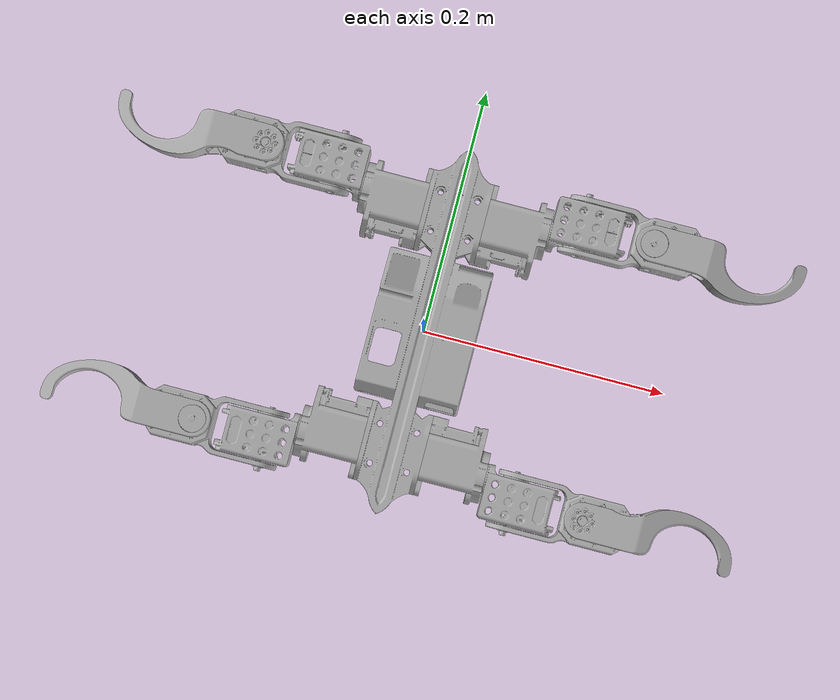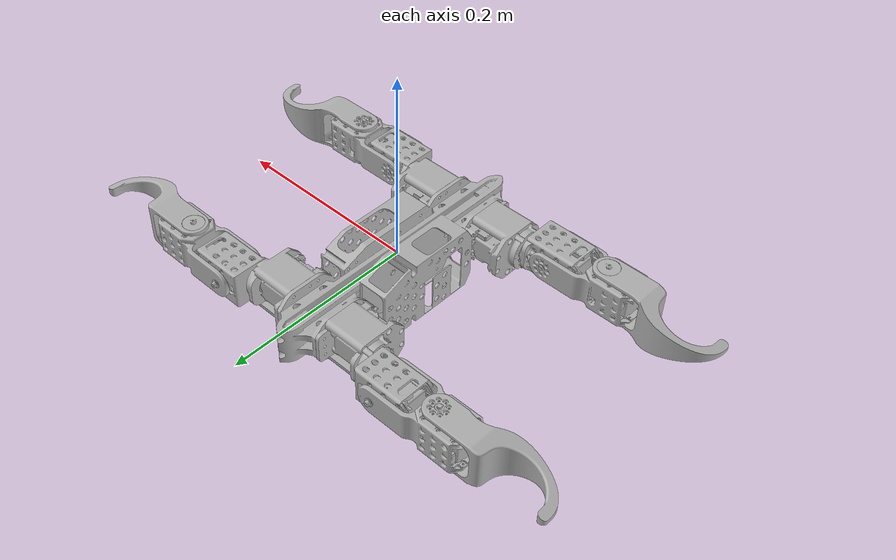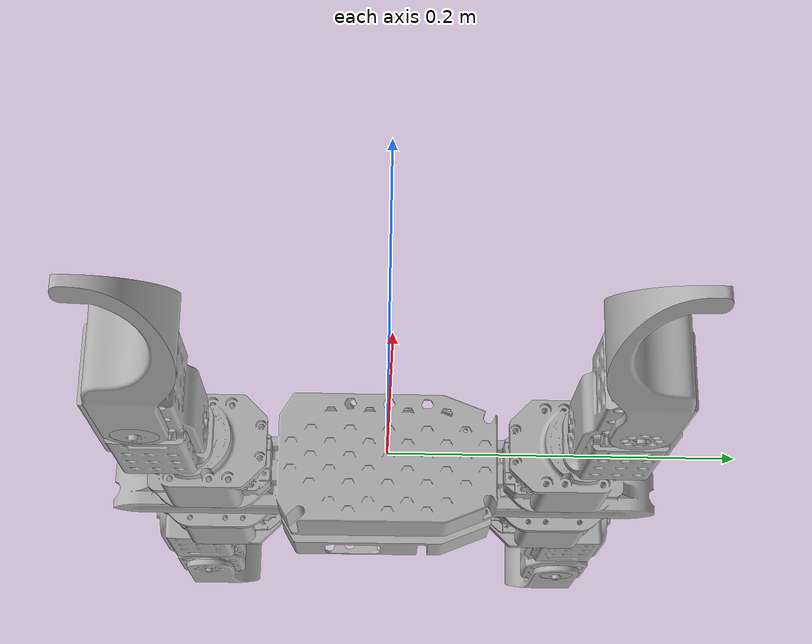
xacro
<?xml version="1.0" ?>
<robot name="sence_main" xmlns:xacro="http://www.ros.org/wiki/xacro">

<xacro:include filename="$(find sence_leg_description)/urdf/sence_leg_macro.xacro"/>
<xacro:include filename="$(find sence_main_description)/urdf/materials.xacro" />
<xacro:include filename="$(find sence_main_description)/urdf/sence_main.trans" />
<xacro:include filename="$(find sence_main_description)/urdf/sence_main.gazebo" />
<link name="base_link">
</link>

<link name="core">
  <inertial>
    <origin xyz="0.00021651891376084524 -0.00010528739970071409 -0.014193022646418384" rpy="0 0 0"/>
    <mass value="0.4767252028506373"/>
    <inertia ixx="0.003452" iyy="0.000207" izz="0.003461" ixy="3e-06" iyz="2e-06" ixz="2e-06"/>
  </inertial>
  <visual>
    <origin xyz="0 0 0" rpy="0 0 0"/>
    <geometry>
      <mesh filename="package://sence_main_description/meshes/base_link.stl" scale="0.001 0.001 0.001"/>
    </geometry>
    <material name="silver"/>
  </visual>
  <collision>
    <origin xyz="0 0 0" rpy="0 0 0"/>
    <geometry>
      <mesh filename="package://sence_main_description/meshes/base_link.stl" scale="0.001 0.001 0.001"/>
    </geometry>
  </collision>
</link>

<joint name="con" type="fixed">
  <origin rpy="0 0 0" xyz="0 0 0"/>
  <parent link="base_link"/>
  <child link="core"/>
</joint>

<xacro:sence_leg_macro prefix="back_right_leg_" parent="core" adjT="0.0826 -0.105095 -0.05196" adjR="0 3.14159 0"/>
<xacro:sence_leg_macro prefix="back_left_leg_" parent="core" adjT="-0.0826 -0.105095 0.024316" adjR="0 0 0"/>
<xacro:sence_leg_macro prefix="front_right_leg_" parent="core" adjT="0.0826 0.105095 0.024316" adjR="3.14159 3.14159 0"/>
<xacro:sence_leg_macro prefix="front_left_leg_" parent="core" adjT="-0.0826 0.105095 -0.05196" adjR="3.14159 0 0"/>

</robot>

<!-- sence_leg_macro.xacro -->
<robot name="sence_leg" xmlns:xacro="http://www.ros.org/wiki/xacro">

<xacro:include filename="$(find sence_leg_description)/urdf/sence_leg.trans" />
<xacro:include filename="$(find sence_leg_description)/urdf/sence_leg.gazebo" />
<xacro:macro name="sence_leg_macro" params="prefix parent adjT adjR">
<link name="${prefix}base_link">
  <inertial>
    <origin xyz="0.029044932513473305 0.010265080427010284 -0.03814827760382364" rpy="0 0 0"/>
    <mass value="0.15187448298114298"/>
    <inertia ixx="5.3e-05" iyy="6.1e-05" izz="6.9e-05" ixy="-6e-06" iyz="0.0" ixz="0.0"/>
  </inertial>
  <visual>
    <origin xyz="0 0 0" rpy="0 0 0"/>
    <geometry>
      <mesh filename="package://sence_leg_description/meshes/base_link.stl" scale="0.001 0.001 0.001"/>
    </geometry>
    <material name="silver"/>
  </visual>
  <collision>
    <origin xyz="0 0 0" rpy="0 0 0"/>
    <geometry>
      <mesh filename="package://sence_leg_description/meshes/base_link.stl" scale="0.001 0.001 0.001"/>
    </geometry>
  </collision>
</link>

<link name="${prefix}HMMR_Leg_J2_v1_1">
  <inertial>
    <origin xyz="-0.04078394902352935 -0.013231283994066126 0.00021684450055575039" rpy="0 0 0"/>
    <mass value="0.09734685103972182"/>
    <inertia ixx="2.2e-05" iyy="3.6e-05" izz="4e-05" ixy="-2e-06" iyz="0.0" ixz="0.0"/>
  </inertial>
  <visual>
    <origin xyz="-0.01348 -0.002676 0.038139" rpy="0 0 0"/>
    <geometry>
      <mesh filename="package://sence_leg_description/meshes/HMMR_Leg_J2_v1_1.stl" scale="0.001 0.001 0.001"/>
    </geometry>
    <material name="silver"/>
  </visual>
  <collision>
    <origin xyz="-0.01348 -0.002676 0.038139" rpy="0 0 0"/>
    <geometry>
      <mesh filename="package://sence_leg_description/meshes/HMMR_Leg_J2_v1_1.stl" scale="0.001 0.001 0.001"/>
    </geometry>
  </collision>
</link>

<link name="${prefix}HMMR_Leg_J3_v1_1">
  <inertial>
    <origin xyz="-0.05832553714381231 -0.021436456555043018 0.0024477833961314005" rpy="0 0 0"/>
    <mass value="0.12243154933451669"/>
    <inertia ixx="3.6e-05" iyy="9.7e-05" izz="9.9e-05" ixy="1e-05" iyz="-0.0" ixz="2e-06"/>
  </inertial>
  <visual>
    <origin xyz="0.020447 -0.009456 0.037939" rpy="0 0 0"/>
    <geometry>
      <mesh filename="package://sence_leg_description/meshes/HMMR_Leg_J3_v1_1.stl" scale="0.001 0.001 0.001"/>
    </geometry>
    <material name="silver"/>
  </visual>
  <collision>
    <origin xyz="0.020447 -0.009456 0.037939" rpy="0 0 0"/>
    <geometry>
      <mesh filename="package://sence_leg_description/meshes/HMMR_Leg_J3_v1_1.stl" scale="0.001 0.001 0.001"/>
    </geometry>
  </collision>
</link>

<link name="${prefix}HMMR_Leg_J4_1">
   <inertial>
    <origin xyz="-0.05691796302157942 0.007704167559869515 0.01964749184467182" rpy="0 0 0"/>
    <mass value="0.05742201556545181"/>
    <inertia ixx="2e-05" iyy="5.7e-05" izz="5.2e-05" ixy="8e-06" iyz="-0.0" ixz="1e-06"/>
  </inertial>
  <visual>
    <origin xyz="0.079954 0.010544 0.057414" rpy="0 0 0"/>
    <geometry>
      <mesh filename="package://sence_leg_description/meshes/HMMR_Leg_J4_v1_1.stl" scale="0.001 0.001 0.001"/>
    </geometry>
    <material name="silver"/>
  </visual>
  <collision>
    <origin xyz="0.079954 0.010544 0.057414" rpy="0 0 0"/>
    <geometry>
      <mesh filename="package://sence_leg_description/meshes/HMMR_Leg_J4_v1_1.stl" scale="0.001 0.001 0.001"/>
    </geometry>
  </collision>
</link>

<joint name="${prefix}system_connection" type="fixed">
  <origin rpy="${adjR}" xyz="${adjT}"/>
  <parent link="${parent}"/>
  <child link="${prefix}base_link"/>
</joint>

<joint name="${prefix}Rev1" type="continuous">
  <origin xyz="0.01348 0.002676 -0.038139" rpy="0 0 0"/>
  <parent link="${prefix}base_link"/>
  <child link="${prefix}HMMR_Leg_J2_v1_1"/>
  <axis xyz="1.0 0.0 -0.0"/>
</joint>

<joint name="${prefix}Rev2" type="revolute">
  <origin xyz="-0.033927 0.00678 0.0002" rpy="0 0 0"/>
  <parent link="${prefix}HMMR_Leg_J2_v1_1"/>
  <child link="${prefix}HMMR_Leg_J3_v1_1"/>
  <axis xyz="0.0 -1.0 0.0"/>
  <limit upper="1.919862" lower="-1.919862" effort="100" velocity="100"/>
</joint>

<joint name="${prefix}Rev3" type="revolute">
  <origin xyz="-0.059507 -0.02 -0.019475" rpy="0 0 0"/>
  <parent link="${prefix}HMMR_Leg_J3_v1_1"/>
  <child link="${prefix}HMMR_Leg_J4_1"/>
  <axis xyz="-0.0 -0.0 1.0"/>
  <limit upper="2.094395" lower="-2.094395" effort="100" velocity="100"/>
</joint>
</xacro:macro>
</robot>

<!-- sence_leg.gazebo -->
<robot name="sence_leg" xmlns:xacro="http://www.ros.org/wiki/xacro" >

<xacro:property name="body_color" value="Gazebo/Silver" />

<gazebo>
  <plugin name="control" filename="libgazebo_ros_control.so"/>
</gazebo>
<gazebo reference="base_link">
  <material>${body_color}</material>
  <mu1>0.2</mu1>
  <mu2>0.2</mu2>
  <selfCollide>true</selfCollide>
  <gravity>true</gravity>
</gazebo>

<gazebo reference="HMMR_Leg_J2_v1_1">
  <material>${body_color}</material>
  <mu1>0.2</mu1>
  <mu2>0.2</mu2>
  <selfCollide>true</selfCollide>
</gazebo>

<gazebo reference="HMMR_Leg_J3_v1_1">
  <material>${body_color}</material>
  <mu1>0.2</mu1>
  <mu2>0.2</mu2>
  <selfCollide>true</selfCollide>
</gazebo>

<gazebo reference="HMMR_Leg_J4_v1_1">
  <material>${body_color}</material>
  <mu1>0.2</mu1>
  <mu2>0.2</mu2>
  <selfCollide>true</selfCollide>
</gazebo>

</robot>

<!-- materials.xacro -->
<robot name="sence_main" xmlns:xacro="http://www.ros.org/wiki/xacro" >

<material name="silver">
  <color rgba="0.700 0.700 0.700 1.000"/>
</material>

</robot>

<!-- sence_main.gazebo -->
<robot name="sence_main" xmlns:xacro="http://www.ros.org/wiki/xacro" >

<xacro:property name="body_color" value="Gazebo/Silver" />

<gazebo>
  <plugin name="control" filename="libgazebo_ros_control.so"/>
</gazebo>
<gazebo reference="base_link">
  <material>${body_color}</material>
  <mu1>0.2</mu1>
  <mu2>0.2</mu2>
  <selfCollide>true</selfCollide>
  <gravity>true</gravity>
</gazebo>

</robot>
